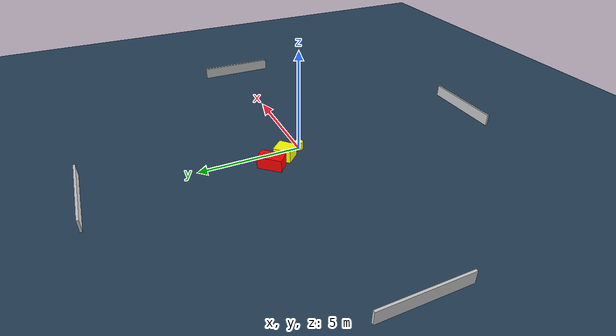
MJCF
<?xml version="1.0" ?>
<mujoco model="generated_environment">
  <option timestep="0.01" integrator="RK4" cone="elliptic"/>
  <default>
    <geom density="1"/>
  </default>
  <asset>
    <texture builtin="gradient" height="3072" name="skybox" rgb1="0.3 0.5 0.7" rgb2="0 0 0" type="skybox" width="512"/>
    <texture builtin="checker" height="300" name="groundplane" rgb1="0.2 0.3 0.4" rgb2="0.1 0.2 0.3" type="2d" width="300"/>
    <material name="groundplane" reflectance="0.2" texrepeat="5 5" texture="groundplane"/>
  </asset>
  <worldbody>
    <light dir="0 0 -1" directional="true" pos="0 0 1.5"/>
    <geom condim="3" friction="0.5 0.005 0.001" material="groundplane" name="floor" pos="0 0 0" size="0 0 0.05" type="plane"/>
    <body name="walls">
      <geom name="wall_1" condim="4" pos="-10.0 0.0 0.3" rgba="0.800000011920929 0.800000011920929 0.800000011920929 1.0" size="0.05 2.0 0.3" type="box"/>
      <geom name="wall_2" condim="4" pos="10.0 0.0 0.3" rgba="0.800000011920929 0.800000011920929 0.800000011920929 1.0" size="0.05 2.0 0.3" type="box"/>
      <geom name="wall_3" condim="4" pos="0.0 -10.0 0.3" rgba="0.800000011920929 0.800000011920929 0.800000011920929 1.0" size="2.0 0.05 0.3" type="box"/>
      <geom name="wall_4" condim="4" pos="0.0 10.0 0.3" rgba="0.800000011920929 0.800000011920929 0.800000011920929 1.0" size="2.0 0.05 0.3" type="box"/>
    </body>
    <body name="robot">
      <joint name="joint_x" type="slide" pos="0 0 0" axis="1 0 0"/>
      <joint name="joint_y" type="slide" pos="0 0 0" axis="0 1 0"/>
      <geom name="robot" type="cylinder" pos="0.0 0.0 0.2" size="0.2 0.2 0.0" mass="5.0" friction="1.0 0.005 0.0001" condim="4" rgba="1.0 1.0 0.0 1.0"/>
    </body>
    <body name="obstacle_1_movable">
      <geom name="obstacle_1_movable" condim="4" pos="-0.4204009743983939 0.9119372839972025 0.3" euler="0 0 134.00065276103754" friction="0.0 0.005 0.001" rgba="1.0 1.0 0.0 1.0" size="0.3946452444768561 0.4334070883544864 0.3" type="box" mass="0.1"/>
      <joint type="free"/>
    </body>
    <body name="obstacle_2_static">
      <geom name="obstacle_2_static" condim="4" pos="-0.8769507331763843 1.7625505190430666 0.3" euler="0 0 228.39449551938736" friction="0.0 0.005 0.001" rgba="1.0 0.0 0.0 1.0" size="0.5952839838569761 0.3369806378765984 0.3" type="box"/>
    </body>
  </worldbody>
  <actuator>
    <motor name="actuator_x" joint="joint_x" gear="1" ctrlrange="-1 1"/>
    <motor name="actuator_y" joint="joint_y" gear="1" ctrlrange="-1 1"/>
  </actuator>
</mujoco>
